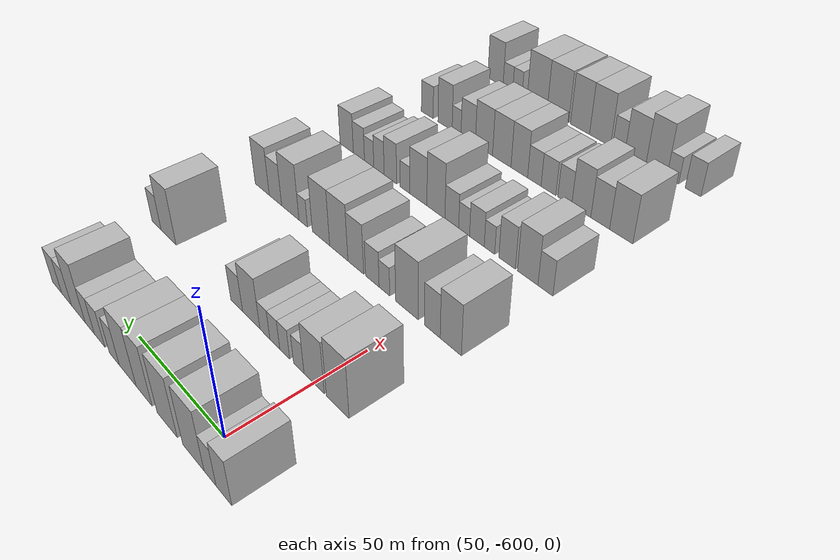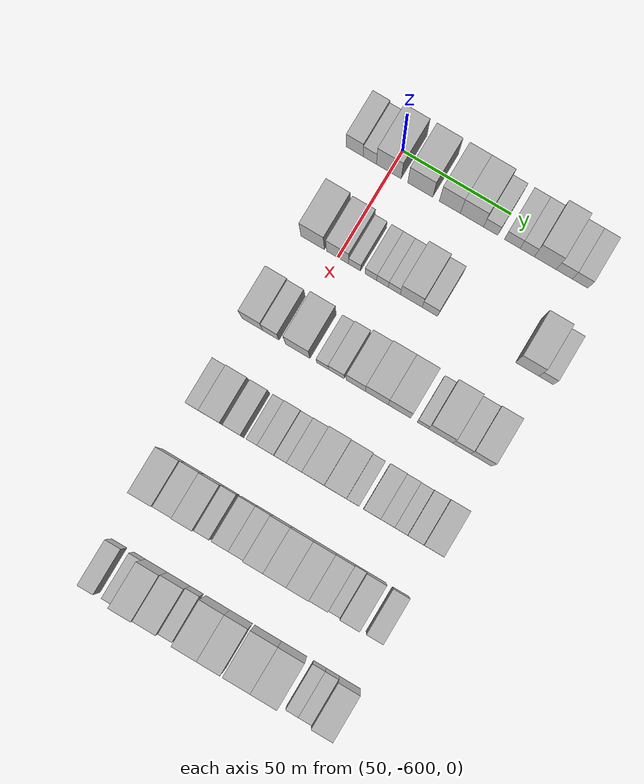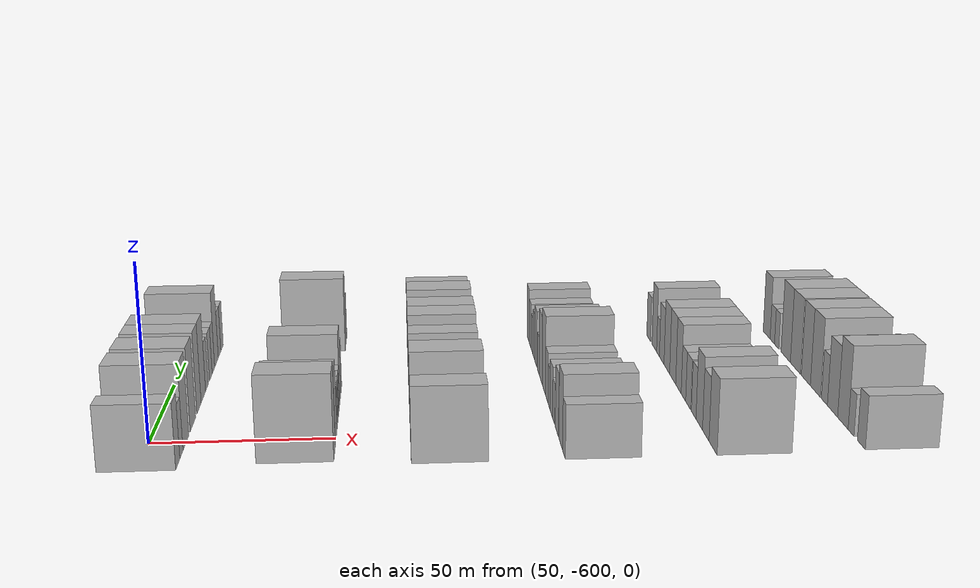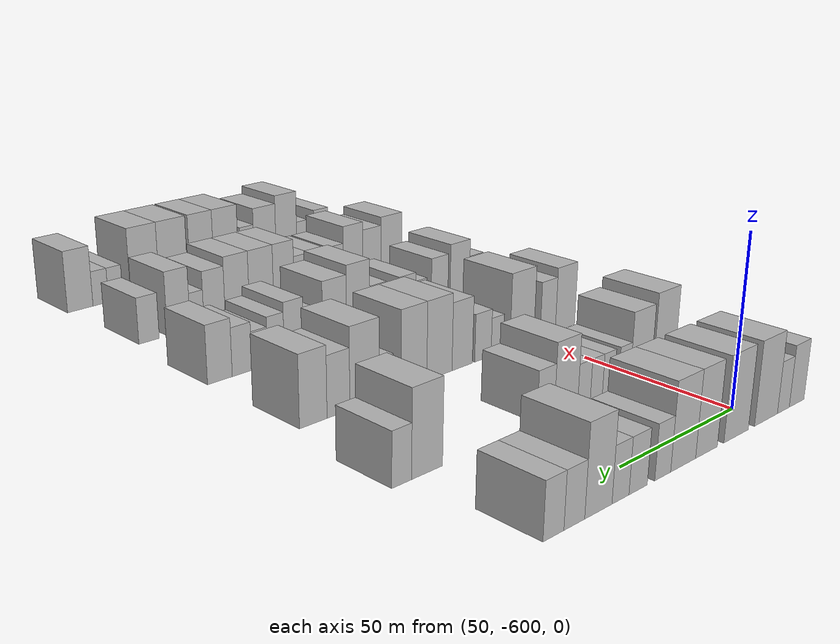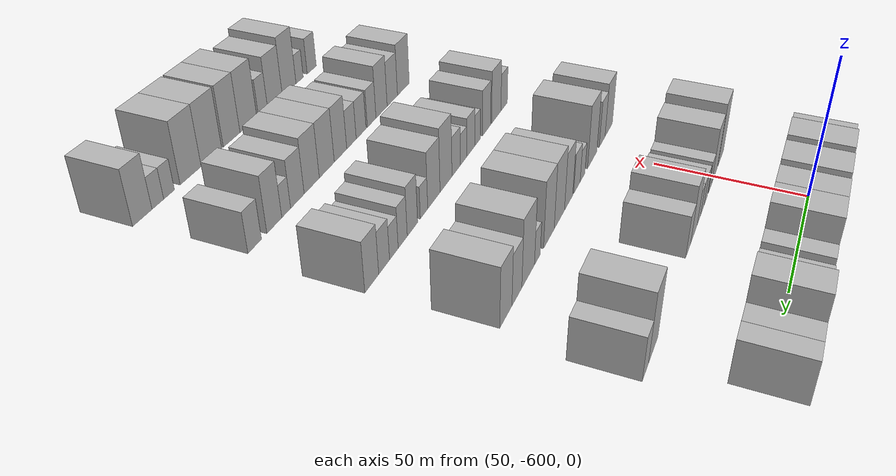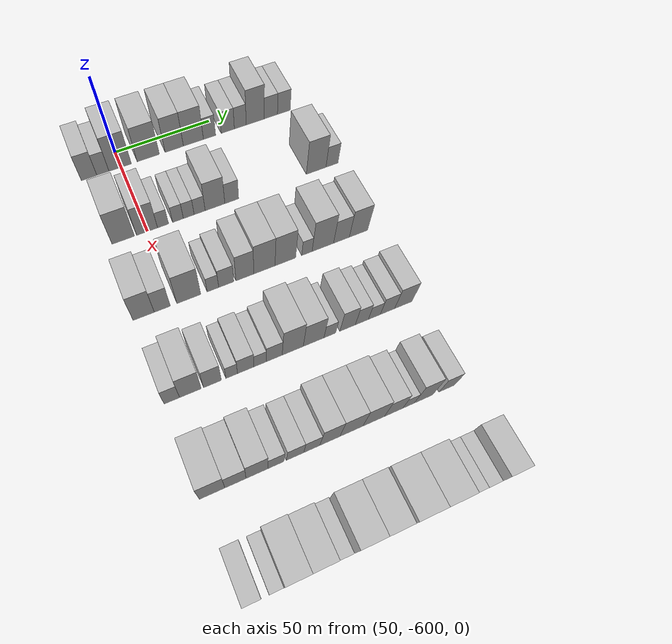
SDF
<sdf version="1.6">
 <world name="default">
  <model name="building_1">
   <static>1</static>
   <pose>50.0000 -616.1149 0 0.000000 0.000000 0.000000</pose>
   <link name="link">
    <pose>0 0 9.00 0 0 0</pose>
    <collision name="collision"><geometry><box><size>20.0000 7.7702 18.0000</size></box></geometry></collision>
    <visual name="visual">
     <cast_shadows>0</cast_shadows>
     <geometry><box><size>20.0000 7.7702 18.0000</size></box></geometry>
     <material>
      <script>
       <uri>model://HANNAS_wall/materials/scripts</uri>
       <uri>model://HANNAS_wall/materials/textures</uri>
       <name>vrc/HANNAS_wall</name>
      </script>
     </material>
    </visual>
   </link>
  </model>
  <model name="building_2">
   <static>1</static>
   <pose>50.0000 -609.1644 0 0.000000 0.000000 0.000000</pose>
   <link name="link">
    <pose>0 0 7.50 0 0 0</pose>
    <collision name="collision"><geometry><box><size>20.0000 6.1308 15.0000</size></box></geometry></collision>
    <visual name="visual">
     <cast_shadows>0</cast_shadows>
     <geometry><box><size>20.0000 6.1308 15.0000</size></box></geometry>
     <material>
      <script>
       <uri>model://HANNAS_wall/materials/scripts</uri>
       <uri>model://HANNAS_wall/materials/textures</uri>
       <name>vrc/HANNAS_wall</name>
      </script>
     </material>
    </visual>
   </link>
  </model>
  <model name="building_3">
   <static>1</static>
   <pose>50.0000 -600.3946 0 0.000000 0.000000 0.000000</pose>
   <link name="link">
    <pose>0 0 12.00 0 0 0</pose>
    <collision name="collision"><geometry><box><size>20.0000 11.4088 24.0000</size></box></geometry></collision>
    <visual name="visual">
     <cast_shadows>0</cast_shadows>
     <geometry><box><size>20.0000 11.4088 24.0000</size></box></geometry>
     <material>
      <script>
       <uri>model://HANNAS_wall/materials/scripts</uri>
       <uri>model://HANNAS_wall/materials/textures</uri>
       <name>vrc/HANNAS_wall</name>
      </script>
     </material>
    </visual>
   </link>
  </model>
  <model name="building_4">
   <static>1</static>
   <pose>50.0000 -585.9319 0 0.000000 0.000000 0.000000</pose>
   <link name="link">
    <pose>0 0 12.00 0 0 0</pose>
    <collision name="collision"><geometry><box><size>20.0000 11.5164 24.0000</size></box></geometry></collision>
    <visual name="visual">
     <cast_shadows>0</cast_shadows>
     <geometry><box><size>20.0000 11.5164 24.0000</size></box></geometry>
     <material>
      <script>
       <uri>model://HANNAS_wall/materials/scripts</uri>
       <uri>model://HANNAS_wall/materials/textures</uri>
       <name>vrc/HANNAS_wall</name>
      </script>
     </material>
    </visual>
   </link>
  </model>
  <model name="building_5">
   <static>1</static>
   <pose>50.0000 -572.3471 0 0.000000 0.000000 0.000000</pose>
   <link name="link">
    <pose>0 0 12.00 0 0 0</pose>
    <collision name="collision"><geometry><box><size>20.0000 9.6532 24.0000</size></box></geometry></collision>
    <visual name="visual">
     <cast_shadows>0</cast_shadows>
     <geometry><box><size>20.0000 9.6532 24.0000</size></box></geometry>
     <material>
      <script>
       <uri>model://HANNAS_wall/materials/scripts</uri>
       <uri>model://HANNAS_wall/materials/textures</uri>
       <name>vrc/HANNAS_wall</name>
      </script>
     </material>
    </visual>
   </link>
  </model>
  <model name="building_6">
   <static>1</static>
   <pose>50.0000 -562.2004 0 0.000000 0.000000 0.000000</pose>
   <link name="link">
    <pose>0 0 12.00 0 0 0</pose>
    <collision name="collision"><geometry><box><size>20.0000 10.6402 24.0000</size></box></geometry></collision>
    <visual name="visual">
     <cast_shadows>0</cast_shadows>
     <geometry><box><size>20.0000 10.6402 24.0000</size></box></geometry>
     <material>
      <script>
       <uri>model://HANNAS_wall/materials/scripts</uri>
       <uri>model://HANNAS_wall/materials/textures</uri>
       <name>vrc/HANNAS_wall</name>
      </script>
     </material>
    </visual>
   </link>
  </model>
  <model name="building_7">
   <static>1</static>
   <pose>50.0000 -553.5937 0 0.000000 0.000000 0.000000</pose>
   <link name="link">
    <pose>0 0 7.50 0 0 0</pose>
    <collision name="collision"><geometry><box><size>20.0000 6.5731 15.0000</size></box></geometry></collision>
    <visual name="visual">
     <cast_shadows>0</cast_shadows>
     <geometry><box><size>20.0000 6.5731 15.0000</size></box></geometry>
     <material>
      <script>
       <uri>model://HANNAS_wall/materials/scripts</uri>
       <uri>model://HANNAS_wall/materials/textures</uri>
       <name>vrc/HANNAS_wall</name>
      </script>
     </material>
    </visual>
   </link>
  </model>
  <model name="building_8">
   <static>1</static>
   <pose>50.0000 -543.7101 0 0.000000 0.000000 0.000000</pose>
   <link name="link">
    <pose>0 0 7.50 0 0 0</pose>
    <collision name="collision"><geometry><box><size>20.0000 7.1941 15.0000</size></box></geometry></collision>
    <visual name="visual">
     <cast_shadows>0</cast_shadows>
     <geometry><box><size>20.0000 7.1941 15.0000</size></box></geometry>
     <material>
      <script>
       <uri>model://HANNAS_wall/materials/scripts</uri>
       <uri>model://HANNAS_wall/materials/textures</uri>
       <name>vrc/HANNAS_wall</name>
      </script>
     </material>
    </visual>
   </link>
  </model>
  <model name="building_9">
   <static>1</static>
   <pose>50.0000 -536.8628 0 0.000000 0.000000 0.000000</pose>
   <link name="link">
    <pose>0 0 7.50 0 0 0</pose>
    <collision name="collision"><geometry><box><size>20.0000 6.5006 15.0000</size></box></geometry></collision>
    <visual name="visual">
     <cast_shadows>0</cast_shadows>
     <geometry><box><size>20.0000 6.5006 15.0000</size></box></geometry>
     <material>
      <script>
       <uri>model://HANNAS_wall/materials/scripts</uri>
       <uri>model://HANNAS_wall/materials/textures</uri>
       <name>vrc/HANNAS_wall</name>
      </script>
     </material>
    </visual>
   </link>
  </model>
  <model name="building_10">
   <static>1</static>
   <pose>50.0000 -528.6027 0 0.000000 0.000000 0.000000</pose>
   <link name="link">
    <pose>0 0 12.00 0 0 0</pose>
    <collision name="collision"><geometry><box><size>20.0000 10.0195 24.0000</size></box></geometry></collision>
    <visual name="visual">
     <cast_shadows>0</cast_shadows>
     <geometry><box><size>20.0000 10.0195 24.0000</size></box></geometry>
     <material>
      <script>
       <uri>model://HANNAS_wall/materials/scripts</uri>
       <uri>model://HANNAS_wall/materials/textures</uri>
       <name>vrc/HANNAS_wall</name>
      </script>
     </material>
    </visual>
   </link>
  </model>
  <model name="building_11">
   <static>1</static>
   <pose>50.0000 -519.9171 0 0.000000 0.000000 0.000000</pose>
   <link name="link">
    <pose>0 0 7.50 0 0 0</pose>
    <collision name="collision"><geometry><box><size>20.0000 7.3516 15.0000</size></box></geometry></collision>
    <visual name="visual">
     <cast_shadows>0</cast_shadows>
     <geometry><box><size>20.0000 7.3516 15.0000</size></box></geometry>
     <material>
      <script>
       <uri>model://HANNAS_wall/materials/scripts</uri>
       <uri>model://HANNAS_wall/materials/textures</uri>
       <name>vrc/HANNAS_wall</name>
      </script>
     </material>
    </visual>
   </link>
  </model>
  <model name="building_12">
   <static>1</static>
   <pose>50.0000 -512.6618 0 0.000000 0.000000 0.000000</pose>
   <link name="link">
    <pose>0 0 7.50 0 0 0</pose>
    <collision name="collision"><geometry><box><size>20.0000 7.1590 15.0000</size></box></geometry></collision>
    <visual name="visual">
     <cast_shadows>0</cast_shadows>
     <geometry><box><size>20.0000 7.1590 15.0000</size></box></geometry>
     <material>
      <script>
       <uri>model://HANNAS_wall/materials/scripts</uri>
       <uri>model://HANNAS_wall/materials/textures</uri>
       <name>vrc/HANNAS_wall</name>
      </script>
     </material>
    </visual>
   </link>
  </model>
  <model name="building_143">
   <static>1</static>
   <pose>90.0000 -611.6116 0 0.000000 0.000000 0.000000</pose>
   <link name="link">
    <pose>0 0 12.00 0 0 0</pose>
    <collision name="collision"><geometry><box><size>20.0000 10.7768 24.0000</size></box></geometry></collision>
    <visual name="visual">
     <cast_shadows>0</cast_shadows>
     <geometry><box><size>20.0000 10.7768 24.0000</size></box></geometry>
     <material>
      <script>
       <uri>model://HANNAS_wall/materials/scripts</uri>
       <uri>model://HANNAS_wall/materials/textures</uri>
       <name>vrc/HANNAS_wall</name>
      </script>
     </material>
    </visual>
   </link>
  </model>
  <model name="building_144">
   <static>1</static>
   <pose>90.0000 -600.1231 0 0.000000 0.000000 0.000000</pose>
   <link name="link">
    <pose>0 0 10.50 0 0 0</pose>
    <collision name="collision"><geometry><box><size>20.0000 10.2001 21.0000</size></box></geometry></collision>
    <visual name="visual">
     <cast_shadows>0</cast_shadows>
     <geometry><box><size>20.0000 10.2001 21.0000</size></box></geometry>
     <material>
      <script>
       <uri>model://HANNAS_wall/materials/scripts</uri>
       <uri>model://HANNAS_wall/materials/textures</uri>
       <name>vrc/HANNAS_wall</name>
      </script>
     </material>
    </visual>
   </link>
  </model>
  <model name="building_145">
   <static>1</static>
   <pose>90.0000 -592.3110 0 0.000000 0.000000 0.000000</pose>
   <link name="link">
    <pose>0 0 6.00 0 0 0</pose>
    <collision name="collision"><geometry><box><size>20.0000 5.4240 12.0000</size></box></geometry></collision>
    <visual name="visual">
     <cast_shadows>0</cast_shadows>
     <geometry><box><size>20.0000 5.4240 12.0000</size></box></geometry>
     <material>
      <script>
       <uri>model://HANNAS_wall/materials/scripts</uri>
       <uri>model://HANNAS_wall/materials/textures</uri>
       <name>vrc/HANNAS_wall</name>
      </script>
     </material>
    </visual>
   </link>
  </model>
  <model name="building_146">
   <static>1</static>
   <pose>90.0000 -584.9441 0 0.000000 0.000000 0.000000</pose>
   <link name="link">
    <pose>0 0 6.00 0 0 0</pose>
    <collision name="collision"><geometry><box><size>20.0000 5.3097 12.0000</size></box></geometry></collision>
    <visual name="visual">
     <cast_shadows>0</cast_shadows>
     <geometry><box><size>20.0000 5.3097 12.0000</size></box></geometry>
     <material>
      <script>
       <uri>model://HANNAS_wall/materials/scripts</uri>
       <uri>model://HANNAS_wall/materials/textures</uri>
       <name>vrc/HANNAS_wall</name>
      </script>
     </material>
    </visual>
   </link>
  </model>
  <model name="building_147">
   <static>1</static>
   <pose>90.0000 -579.5934 0 0.000000 0.000000 0.000000</pose>
   <link name="link">
    <pose>0 0 6.00 0 0 0</pose>
    <collision name="collision"><geometry><box><size>20.0000 5.3918 12.0000</size></box></geometry></collision>
    <visual name="visual">
     <cast_shadows>0</cast_shadows>
     <geometry><box><size>20.0000 5.3918 12.0000</size></box></geometry>
     <material>
      <script>
       <uri>model://HANNAS_wall/materials/scripts</uri>
       <uri>model://HANNAS_wall/materials/textures</uri>
       <name>vrc/HANNAS_wall</name>
      </script>
     </material>
    </visual>
   </link>
  </model>
  <model name="building_148">
   <static>1</static>
   <pose>90.0000 -574.1305 0 0.000000 0.000000 0.000000</pose>
   <link name="link">
    <pose>0 0 6.00 0 0 0</pose>
    <collision name="collision"><geometry><box><size>20.0000 5.5339 12.0000</size></box></geometry></collision>
    <visual name="visual">
     <cast_shadows>0</cast_shadows>
     <geometry><box><size>20.0000 5.5339 12.0000</size></box></geometry>
     <material>
      <script>
       <uri>model://HANNAS_wall/materials/scripts</uri>
       <uri>model://HANNAS_wall/materials/textures</uri>
       <name>vrc/HANNAS_wall</name>
      </script>
     </material>
    </visual>
   </link>
  </model>
  <model name="building_149">
   <static>1</static>
   <pose>90.0000 -566.3883 0 0.000000 0.000000 0.000000</pose>
   <link name="link">
    <pose>0 0 10.50 0 0 0</pose>
    <collision name="collision"><geometry><box><size>20.0000 9.9505 21.0000</size></box></geometry></collision>
    <visual name="visual">
     <cast_shadows>0</cast_shadows>
     <geometry><box><size>20.0000 9.9505 21.0000</size></box></geometry>
     <material>
      <script>
       <uri>model://HANNAS_wall/materials/scripts</uri>
       <uri>model://HANNAS_wall/materials/textures</uri>
       <name>vrc/HANNAS_wall</name>
      </script>
     </material>
    </visual>
   </link>
  </model>
  <model name="building_150">
   <static>1</static>
   <pose>90.0000 -557.8802 0 0.000000 0.000000 0.000000</pose>
   <link name="link">
    <pose>0 0 7.50 0 0 0</pose>
    <collision name="collision"><geometry><box><size>20.0000 7.0658 15.0000</size></box></geometry></collision>
    <visual name="visual">
     <cast_shadows>0</cast_shadows>
     <geometry><box><size>20.0000 7.0658 15.0000</size></box></geometry>
     <material>
      <script>
       <uri>model://HANNAS_wall/materials/scripts</uri>
       <uri>model://HANNAS_wall/materials/textures</uri>
       <name>vrc/HANNAS_wall</name>
      </script>
     </material>
    </visual>
   </link>
  </model>
  <model name="building_151">
   <static>1</static>
   <pose>90.0000 -513.4786 0 0.000000 0.000000 0.000000</pose>
   <link name="link">
    <pose>0 0 12.00 0 0 0</pose>
    <collision name="collision"><geometry><box><size>20.0000 10.5791 24.0000</size></box></geometry></collision>
    <visual name="visual">
     <cast_shadows>0</cast_shadows>
     <geometry><box><size>20.0000 10.5791 24.0000</size></box></geometry>
     <material>
      <script>
       <uri>model://HANNAS_wall/materials/scripts</uri>
       <uri>model://HANNAS_wall/materials/textures</uri>
       <name>vrc/HANNAS_wall</name>
      </script>
     </material>
    </visual>
   </link>
  </model>
  <model name="building_152">
   <static>1</static>
   <pose>90.0000 -504.9172 0 0.000000 0.000000 0.000000</pose>
   <link name="link">
    <pose>0 0 7.50 0 0 0</pose>
    <collision name="collision"><geometry><box><size>20.0000 6.5437 15.0000</size></box></geometry></collision>
    <visual name="visual">
     <cast_shadows>0</cast_shadows>
     <geometry><box><size>20.0000 6.5437 15.0000</size></box></geometry>
     <material>
      <script>
       <uri>model://HANNAS_wall/materials/scripts</uri>
       <uri>model://HANNAS_wall/materials/textures</uri>
       <name>vrc/HANNAS_wall</name>
      </script>
     </material>
    </visual>
   </link>
  </model>
  <model name="building_264">
   <static>1</static>
   <pose>130.0000 -615.1982 0 0.000000 0.000000 0.000000</pose>
   <link name="link">
    <pose>0 0 10.50 0 0 0</pose>
    <collision name="collision"><geometry><box><size>20.0000 9.6036 21.0000</size></box></geometry></collision>
    <visual name="visual">
     <cast_shadows>0</cast_shadows>
     <geometry><box><size>20.0000 9.6036 21.0000</size></box></geometry>
     <material>
      <script>
       <uri>model://HANNAS_wall/materials/scripts</uri>
       <uri>model://HANNAS_wall/materials/textures</uri>
       <name>vrc/HANNAS_wall</name>
      </script>
     </material>
    </visual>
   </link>
  </model>
  <model name="building_265">
   <static>1</static>
   <pose>130.0000 -606.7101 0 0.000000 0.000000 0.000000</pose>
   <link name="link">
    <pose>0 0 9.00 0 0 0</pose>
    <collision name="collision"><geometry><box><size>20.0000 7.3726 18.0000</size></box></geometry></collision>
    <visual name="visual">
     <cast_shadows>0</cast_shadows>
     <geometry><box><size>20.0000 7.3726 18.0000</size></box></geometry>
     <material>
      <script>
       <uri>model://HANNAS_wall/materials/scripts</uri>
       <uri>model://HANNAS_wall/materials/textures</uri>
       <name>vrc/HANNAS_wall</name>
      </script>
     </material>
    </visual>
   </link>
  </model>
  <model name="building_266">
   <static>1</static>
   <pose>130.0000 -594.4549 0 0.000000 0.000000 0.000000</pose>
   <link name="link">
    <pose>0 0 12.00 0 0 0</pose>
    <collision name="collision"><geometry><box><size>20.0000 11.1380 24.0000</size></box></geometry></collision>
    <visual name="visual">
     <cast_shadows>0</cast_shadows>
     <geometry><box><size>20.0000 11.1380 24.0000</size></box></geometry>
     <material>
      <script>
       <uri>model://HANNAS_wall/materials/scripts</uri>
       <uri>model://HANNAS_wall/materials/textures</uri>
       <name>vrc/HANNAS_wall</name>
      </script>
     </material>
    </visual>
   </link>
  </model>
  <model name="building_267">
   <static>1</static>
   <pose>130.0000 -583.1465 0 0.000000 0.000000 0.000000</pose>
   <link name="link">
    <pose>0 0 6.00 0 0 0</pose>
    <collision name="collision"><geometry><box><size>20.0000 5.4787 12.0000</size></box></geometry></collision>
    <visual name="visual">
     <cast_shadows>0</cast_shadows>
     <geometry><box><size>20.0000 5.4787 12.0000</size></box></geometry>
     <material>
      <script>
       <uri>model://HANNAS_wall/materials/scripts</uri>
       <uri>model://HANNAS_wall/materials/textures</uri>
       <name>vrc/HANNAS_wall</name>
      </script>
     </material>
    </visual>
   </link>
  </model>
  <model name="building_268">
   <static>1</static>
   <pose>130.0000 -576.8171 0 0.000000 0.000000 0.000000</pose>
   <link name="link">
    <pose>0 0 7.50 0 0 0</pose>
    <collision name="collision"><geometry><box><size>20.0000 7.1802 15.0000</size></box></geometry></collision>
    <visual name="visual">
     <cast_shadows>0</cast_shadows>
     <geometry><box><size>20.0000 7.1802 15.0000</size></box></geometry>
     <material>
      <script>
       <uri>model://HANNAS_wall/materials/scripts</uri>
       <uri>model://HANNAS_wall/materials/textures</uri>
       <name>vrc/HANNAS_wall</name>
      </script>
     </material>
    </visual>
   </link>
  </model>
  <model name="building_269">
   <static>1</static>
   <pose>130.0000 -567.9009 0 0.000000 0.000000 0.000000</pose>
   <link name="link">
    <pose>0 0 10.50 0 0 0</pose>
    <collision name="collision"><geometry><box><size>20.0000 8.6522 21.0000</size></box></geometry></collision>
    <visual name="visual">
     <cast_shadows>0</cast_shadows>
     <geometry><box><size>20.0000 8.6522 21.0000</size></box></geometry>
     <material>
      <script>
       <uri>model://HANNAS_wall/materials/scripts</uri>
       <uri>model://HANNAS_wall/materials/textures</uri>
       <name>vrc/HANNAS_wall</name>
      </script>
     </material>
    </visual>
   </link>
  </model>
  <model name="building_270">
   <static>1</static>
   <pose>130.0000 -558.3984 0 0.000000 0.000000 0.000000</pose>
   <link name="link">
    <pose>0 0 12.00 0 0 0</pose>
    <collision name="collision"><geometry><box><size>20.0000 10.3528 24.0000</size></box></geometry></collision>
    <visual name="visual">
     <cast_shadows>0</cast_shadows>
     <geometry><box><size>20.0000 10.3528 24.0000</size></box></geometry>
     <material>
      <script>
       <uri>model://HANNAS_wall/materials/scripts</uri>
       <uri>model://HANNAS_wall/materials/textures</uri>
       <name>vrc/HANNAS_wall</name>
      </script>
     </material>
    </visual>
   </link>
  </model>
  <model name="building_271">
   <static>1</static>
   <pose>130.0000 -548.1175 0 0.000000 0.000000 0.000000</pose>
   <link name="link">
    <pose>0 0 12.00 0 0 0</pose>
    <collision name="collision"><geometry><box><size>20.0000 10.2091 24.0000</size></box></geometry></collision>
    <visual name="visual">
     <cast_shadows>0</cast_shadows>
     <geometry><box><size>20.0000 10.2091 24.0000</size></box></geometry>
     <material>
      <script>
       <uri>model://HANNAS_wall/materials/scripts</uri>
       <uri>model://HANNAS_wall/materials/textures</uri>
       <name>vrc/HANNAS_wall</name>
      </script>
     </material>
    </visual>
   </link>
  </model>
  <model name="building_272">
   <static>1</static>
   <pose>130.0000 -537.4158 0 0.000000 0.000000 0.000000</pose>
   <link name="link">
    <pose>0 0 6.00 0 0 0</pose>
    <collision name="collision"><geometry><box><size>20.0000 5.1942 12.0000</size></box></geometry></collision>
    <visual name="visual">
     <cast_shadows>0</cast_shadows>
     <geometry><box><size>20.0000 5.1942 12.0000</size></box></geometry>
     <material>
      <script>
       <uri>model://HANNAS_wall/materials/scripts</uri>
       <uri>model://HANNAS_wall/materials/textures</uri>
       <name>vrc/HANNAS_wall</name>
      </script>
     </material>
    </visual>
   </link>
  </model>
  <model name="building_273">
   <static>1</static>
   <pose>130.0000 -529.3604 0 0.000000 0.000000 0.000000</pose>
   <link name="link">
    <pose>0 0 12.00 0 0 0</pose>
    <collision name="collision"><geometry><box><size>20.0000 10.9167 24.0000</size></box></geometry></collision>
    <visual name="visual">
     <cast_shadows>0</cast_shadows>
     <geometry><box><size>20.0000 10.9167 24.0000</size></box></geometry>
     <material>
      <script>
       <uri>model://HANNAS_wall/materials/scripts</uri>
       <uri>model://HANNAS_wall/materials/textures</uri>
       <name>vrc/HANNAS_wall</name>
      </script>
     </material>
    </visual>
   </link>
  </model>
  <model name="building_274">
   <static>1</static>
   <pose>130.0000 -519.8561 0 0.000000 0.000000 0.000000</pose>
   <link name="link">
    <pose>0 0 9.00 0 0 0</pose>
    <collision name="collision"><geometry><box><size>20.0000 8.0918 18.0000</size></box></geometry></collision>
    <visual name="visual">
     <cast_shadows>0</cast_shadows>
     <geometry><box><size>20.0000 8.0918 18.0000</size></box></geometry>
     <material>
      <script>
       <uri>model://HANNAS_wall/materials/scripts</uri>
       <uri>model://HANNAS_wall/materials/textures</uri>
       <name>vrc/HANNAS_wall</name>
      </script>
     </material>
    </visual>
   </link>
  </model>
  <model name="building_275">
   <static>1</static>
   <pose>130.0000 -511.0753 0 0.000000 0.000000 0.000000</pose>
   <link name="link">
    <pose>0 0 10.50 0 0 0</pose>
    <collision name="collision"><geometry><box><size>20.0000 9.4700 21.0000</size></box></geometry></collision>
    <visual name="visual">
     <cast_shadows>0</cast_shadows>
     <geometry><box><size>20.0000 9.4700 21.0000</size></box></geometry>
     <material>
      <script>
       <uri>model://HANNAS_wall/materials/scripts</uri>
       <uri>model://HANNAS_wall/materials/textures</uri>
       <name>vrc/HANNAS_wall</name>
      </script>
     </material>
    </visual>
   </link>
  </model>
  <model name="building_400">
   <static>1</static>
   <pose>170.0000 -616.6754 0 0.000000 0.000000 0.000000</pose>
   <link name="link">
    <pose>0 0 7.50 0 0 0</pose>
    <collision name="collision"><geometry><box><size>20.0000 6.6492 15.0000</size></box></geometry></collision>
    <visual name="visual">
     <cast_shadows>0</cast_shadows>
     <geometry><box><size>20.0000 6.6492 15.0000</size></box></geometry>
     <material>
      <script>
       <uri>model://HANNAS_wall/materials/scripts</uri>
       <uri>model://HANNAS_wall/materials/textures</uri>
       <name>vrc/HANNAS_wall</name>
      </script>
     </material>
    </visual>
   </link>
  </model>
  <model name="building_401">
   <static>1</static>
   <pose>170.0000 -608.6619 0 0.000000 0.000000 0.000000</pose>
   <link name="link">
    <pose>0 0 10.50 0 0 0</pose>
    <collision name="collision"><geometry><box><size>20.0000 9.3779 21.0000</size></box></geometry></collision>
    <visual name="visual">
     <cast_shadows>0</cast_shadows>
     <geometry><box><size>20.0000 9.3779 21.0000</size></box></geometry>
     <material>
      <script>
       <uri>model://HANNAS_wall/materials/scripts</uri>
       <uri>model://HANNAS_wall/materials/textures</uri>
       <name>vrc/HANNAS_wall</name>
      </script>
     </material>
    </visual>
   </link>
  </model>
  <model name="building_402">
   <static>1</static>
   <pose>170.0000 -599.0482 0 0.000000 0.000000 0.000000</pose>
   <link name="link">
    <pose>0 0 9.00 0 0 0</pose>
    <collision name="collision"><geometry><box><size>20.0000 7.8495 18.0000</size></box></geometry></collision>
    <visual name="visual">
     <cast_shadows>0</cast_shadows>
     <geometry><box><size>20.0000 7.8495 18.0000</size></box></geometry>
     <material>
      <script>
       <uri>model://HANNAS_wall/materials/scripts</uri>
       <uri>model://HANNAS_wall/materials/textures</uri>
       <name>vrc/HANNAS_wall</name>
      </script>
     </material>
    </visual>
   </link>
  </model>
  <model name="building_403">
   <static>1</static>
   <pose>170.0000 -590.5493 0 0.000000 0.000000 0.000000</pose>
   <link name="link">
    <pose>0 0 6.00 0 0 0</pose>
    <collision name="collision"><geometry><box><size>20.0000 5.1484 12.0000</size></box></geometry></collision>
    <visual name="visual">
     <cast_shadows>0</cast_shadows>
     <geometry><box><size>20.0000 5.1484 12.0000</size></box></geometry>
     <material>
      <script>
       <uri>model://HANNAS_wall/materials/scripts</uri>
       <uri>model://HANNAS_wall/materials/textures</uri>
       <name>vrc/HANNAS_wall</name>
      </script>
     </material>
    </visual>
   </link>
  </model>
  <model name="building_404">
   <static>1</static>
   <pose>170.0000 -584.2911 0 0.000000 0.000000 0.000000</pose>
   <link name="link">
    <pose>0 0 7.50 0 0 0</pose>
    <collision name="collision"><geometry><box><size>20.0000 7.3679 15.0000</size></box></geometry></collision>
    <visual name="visual">
     <cast_shadows>0</cast_shadows>
     <geometry><box><size>20.0000 7.3679 15.0000</size></box></geometry>
     <material>
      <script>
       <uri>model://HANNAS_wall/materials/scripts</uri>
       <uri>model://HANNAS_wall/materials/textures</uri>
       <name>vrc/HANNAS_wall</name>
      </script>
     </material>
    </visual>
   </link>
  </model>
  <model name="building_405">
   <static>1</static>
   <pose>170.0000 -577.7907 0 0.000000 0.000000 0.000000</pose>
   <link name="link">
    <pose>0 0 6.00 0 0 0</pose>
    <collision name="collision"><geometry><box><size>20.0000 5.6329 12.0000</size></box></geometry></collision>
    <visual name="visual">
     <cast_shadows>0</cast_shadows>
     <geometry><box><size>20.0000 5.6329 12.0000</size></box></geometry>
     <material>
      <script>
       <uri>model://HANNAS_wall/materials/scripts</uri>
       <uri>model://HANNAS_wall/materials/textures</uri>
       <name>vrc/HANNAS_wall</name>
      </script>
     </material>
    </visual>
   </link>
  </model>
  <model name="building_406">
   <static>1</static>
   <pose>170.0000 -571.3743 0 0.000000 0.000000 0.000000</pose>
   <link name="link">
    <pose>0 0 7.50 0 0 0</pose>
    <collision name="collision"><geometry><box><size>20.0000 7.1998 15.0000</size></box></geometry></collision>
    <visual name="visual">
     <cast_shadows>0</cast_shadows>
     <geometry><box><size>20.0000 7.1998 15.0000</size></box></geometry>
     <material>
      <script>
       <uri>model://HANNAS_wall/materials/scripts</uri>
       <uri>model://HANNAS_wall/materials/textures</uri>
       <name>vrc/HANNAS_wall</name>
      </script>
     </material>
    </visual>
   </link>
  </model>
  <model name="building_407">
   <static>1</static>
   <pose>170.0000 -562.8871 0 0.000000 0.000000 0.000000</pose>
   <link name="link">
    <pose>0 0 12.00 0 0 0</pose>
    <collision name="collision"><geometry><box><size>20.0000 9.7747 24.0000</size></box></geometry></collision>
    <visual name="visual">
     <cast_shadows>0</cast_shadows>
     <geometry><box><size>20.0000 9.7747 24.0000</size></box></geometry>
     <material>
      <script>
       <uri>model://HANNAS_wall/materials/scripts</uri>
       <uri>model://HANNAS_wall/materials/textures</uri>
       <name>vrc/HANNAS_wall</name>
      </script>
     </material>
    </visual>
   </link>
  </model>
  <model name="building_408">
   <static>1</static>
   <pose>170.0000 -553.1674 0 0.000000 0.000000 0.000000</pose>
   <link name="link">
    <pose>0 0 10.50 0 0 0</pose>
    <collision name="collision"><geometry><box><size>20.0000 9.6646 21.0000</size></box></geometry></collision>
    <visual name="visual">
     <cast_shadows>0</cast_shadows>
     <geometry><box><size>20.0000 9.6646 21.0000</size></box></geometry>
     <material>
      <script>
       <uri>model://HANNAS_wall/materials/scripts</uri>
       <uri>model://HANNAS_wall/materials/textures</uri>
       <name>vrc/HANNAS_wall</name>
      </script>
     </material>
    </visual>
   </link>
  </model>
  <model name="building_409">
   <static>1</static>
   <pose>170.0000 -545.5513 0 0.000000 0.000000 0.000000</pose>
   <link name="link">
    <pose>0 0 6.00 0 0 0</pose>
    <collision name="collision"><geometry><box><size>20.0000 5.5677 12.0000</size></box></geometry></collision>
    <visual name="visual">
     <cast_shadows>0</cast_shadows>
     <geometry><box><size>20.0000 5.5677 12.0000</size></box></geometry>
     <material>
      <script>
       <uri>model://HANNAS_wall/materials/scripts</uri>
       <uri>model://HANNAS_wall/materials/textures</uri>
       <name>vrc/HANNAS_wall</name>
      </script>
     </material>
    </visual>
   </link>
  </model>
  <model name="building_410">
   <static>1</static>
   <pose>170.0000 -537.0528 0 0.000000 0.000000 0.000000</pose>
   <link name="link">
    <pose>0 0 9.00 0 0 0</pose>
    <collision name="collision"><geometry><box><size>20.0000 7.4292 18.0000</size></box></geometry></collision>
    <visual name="visual">
     <cast_shadows>0</cast_shadows>
     <geometry><box><size>20.0000 7.4292 18.0000</size></box></geometry>
     <material>
      <script>
       <uri>model://HANNAS_wall/materials/scripts</uri>
       <uri>model://HANNAS_wall/materials/textures</uri>
       <name>vrc/HANNAS_wall</name>
      </script>
     </material>
    </visual>
   </link>
  </model>
  <model name="building_411">
   <static>1</static>
   <pose>170.0000 -530.1943 0 0.000000 0.000000 0.000000</pose>
   <link name="link">
    <pose>0 0 7.50 0 0 0</pose>
    <collision name="collision"><geometry><box><size>20.0000 6.2876 15.0000</size></box></geometry></collision>
    <visual name="visual">
     <cast_shadows>0</cast_shadows>
     <geometry><box><size>20.0000 6.2876 15.0000</size></box></geometry>
     <material>
      <script>
       <uri>model://HANNAS_wall/materials/scripts</uri>
       <uri>model://HANNAS_wall/materials/textures</uri>
       <name>vrc/HANNAS_wall</name>
      </script>
     </material>
    </visual>
   </link>
  </model>
  <model name="building_412">
   <static>1</static>
   <pose>170.0000 -524.1523 0 0.000000 0.000000 0.000000</pose>
   <link name="link">
    <pose>0 0 6.00 0 0 0</pose>
    <collision name="collision"><geometry><box><size>20.0000 5.7964 12.0000</size></box></geometry></collision>
    <visual name="visual">
     <cast_shadows>0</cast_shadows>
     <geometry><box><size>20.0000 5.7964 12.0000</size></box></geometry>
     <material>
      <script>
       <uri>model://HANNAS_wall/materials/scripts</uri>
       <uri>model://HANNAS_wall/materials/textures</uri>
       <name>vrc/HANNAS_wall</name>
      </script>
     </material>
    </visual>
   </link>
  </model>
  <model name="building_413">
   <static>1</static>
   <pose>170.0000 -517.7352 0 0.000000 0.000000 0.000000</pose>
   <link name="link">
    <pose>0 0 7.50 0 0 0</pose>
    <collision name="collision"><geometry><box><size>20.0000 7.0379 15.0000</size></box></geometry></collision>
    <visual name="visual">
     <cast_shadows>0</cast_shadows>
     <geometry><box><size>20.0000 7.0379 15.0000</size></box></geometry>
     <material>
      <script>
       <uri>model://HANNAS_wall/materials/scripts</uri>
       <uri>model://HANNAS_wall/materials/textures</uri>
       <name>vrc/HANNAS_wall</name>
      </script>
     </material>
    </visual>
   </link>
  </model>
  <model name="building_414">
   <static>1</static>
   <pose>170.0000 -509.8837 0 0.000000 0.000000 0.000000</pose>
   <link name="link">
    <pose>0 0 9.00 0 0 0</pose>
    <collision name="collision"><geometry><box><size>20.0000 8.6650 18.0000</size></box></geometry></collision>
    <visual name="visual">
     <cast_shadows>0</cast_shadows>
     <geometry><box><size>20.0000 8.6650 18.0000</size></box></geometry>
     <material>
      <script>
       <uri>model://HANNAS_wall/materials/scripts</uri>
       <uri>model://HANNAS_wall/materials/textures</uri>
       <name>vrc/HANNAS_wall</name>
      </script>
     </material>
    </visual>
   </link>
  </model>
  <model name="building_545">
   <static>1</static>
   <pose>210.0000 -614.8289 0 0.000000 0.000000 0.000000</pose>
   <link name="link">
    <pose>0 0 10.50 0 0 0</pose>
    <collision name="collision"><geometry><box><size>20.0000 10.3422 21.0000</size></box></geometry></collision>
    <visual name="visual">
     <cast_shadows>0</cast_shadows>
     <geometry><box><size>20.0000 10.3422 21.0000</size></box></geometry>
     <material>
      <script>
       <uri>model://HANNAS_wall/materials/scripts</uri>
       <uri>model://HANNAS_wall/materials/textures</uri>
       <name>vrc/HANNAS_wall</name>
      </script>
     </material>
    </visual>
   </link>
  </model>
  <model name="building_546">
   <static>1</static>
   <pose>210.0000 -605.3072 0 0.000000 0.000000 0.000000</pose>
   <link name="link">
    <pose>0 0 9.00 0 0 0</pose>
    <collision name="collision"><geometry><box><size>20.0000 8.7013 18.0000</size></box></geometry></collision>
    <visual name="visual">
     <cast_shadows>0</cast_shadows>
     <geometry><box><size>20.0000 8.7013 18.0000</size></box></geometry>
     <material>
      <script>
       <uri>model://HANNAS_wall/materials/scripts</uri>
       <uri>model://HANNAS_wall/materials/textures</uri>
       <name>vrc/HANNAS_wall</name>
      </script>
     </material>
    </visual>
   </link>
  </model>
  <model name="building_547">
   <static>1</static>
   <pose>210.0000 -596.4038 0 0.000000 0.000000 0.000000</pose>
   <link name="link">
    <pose>0 0 10.50 0 0 0</pose>
    <collision name="collision"><geometry><box><size>20.0000 9.1056 21.0000</size></box></geometry></collision>
    <visual name="visual">
     <cast_shadows>0</cast_shadows>
     <geometry><box><size>20.0000 9.1056 21.0000</size></box></geometry>
     <material>
      <script>
       <uri>model://HANNAS_wall/materials/scripts</uri>
       <uri>model://HANNAS_wall/materials/textures</uri>
       <name>vrc/HANNAS_wall</name>
      </script>
     </material>
    </visual>
   </link>
  </model>
  <model name="building_548">
   <static>1</static>
   <pose>210.0000 -588.4519 0 0.000000 0.000000 0.000000</pose>
   <link name="link">
    <pose>0 0 7.50 0 0 0</pose>
    <collision name="collision"><geometry><box><size>20.0000 6.7982 15.0000</size></box></geometry></collision>
    <visual name="visual">
     <cast_shadows>0</cast_shadows>
     <geometry><box><size>20.0000 6.7982 15.0000</size></box></geometry>
     <material>
      <script>
       <uri>model://HANNAS_wall/materials/scripts</uri>
       <uri>model://HANNAS_wall/materials/textures</uri>
       <name>vrc/HANNAS_wall</name>
      </script>
     </material>
    </visual>
   </link>
  </model>
  <model name="building_549">
   <static>1</static>
   <pose>210.0000 -580.3320 0 0.000000 0.000000 0.000000</pose>
   <link name="link">
    <pose>0 0 7.50 0 0 0</pose>
    <collision name="collision"><geometry><box><size>20.0000 7.4416 15.0000</size></box></geometry></collision>
    <visual name="visual">
     <cast_shadows>0</cast_shadows>
     <geometry><box><size>20.0000 7.4416 15.0000</size></box></geometry>
     <material>
      <script>
       <uri>model://HANNAS_wall/materials/scripts</uri>
       <uri>model://HANNAS_wall/materials/textures</uri>
       <name>vrc/HANNAS_wall</name>
      </script>
     </material>
    </visual>
   </link>
  </model>
  <model name="building_550">
   <static>1</static>
   <pose>210.0000 -573.1347 0 0.000000 0.000000 0.000000</pose>
   <link name="link">
    <pose>0 0 7.50 0 0 0</pose>
    <collision name="collision"><geometry><box><size>20.0000 6.9529 15.0000</size></box></geometry></collision>
    <visual name="visual">
     <cast_shadows>0</cast_shadows>
     <geometry><box><size>20.0000 6.9529 15.0000</size></box></geometry>
     <material>
      <script>
       <uri>model://HANNAS_wall/materials/scripts</uri>
       <uri>model://HANNAS_wall/materials/textures</uri>
       <name>vrc/HANNAS_wall</name>
      </script>
     </material>
    </visual>
   </link>
  </model>
  <model name="building_551">
   <static>1</static>
   <pose>210.0000 -565.2475 0 0.000000 0.000000 0.000000</pose>
   <link name="link">
    <pose>0 0 10.50 0 0 0</pose>
    <collision name="collision"><geometry><box><size>20.0000 8.8216 21.0000</size></box></geometry></collision>
    <visual name="visual">
     <cast_shadows>0</cast_shadows>
     <geometry><box><size>20.0000 8.8216 21.0000</size></box></geometry>
     <material>
      <script>
       <uri>model://HANNAS_wall/materials/scripts</uri>
       <uri>model://HANNAS_wall/materials/textures</uri>
       <name>vrc/HANNAS_wall</name>
      </script>
     </material>
    </visual>
   </link>
  </model>
  <model name="building_552">
   <static>1</static>
   <pose>210.0000 -555.7722 0 0.000000 0.000000 0.000000</pose>
   <link name="link">
    <pose>0 0 10.50 0 0 0</pose>
    <collision name="collision"><geometry><box><size>20.0000 10.1289 21.0000</size></box></geometry></collision>
    <visual name="visual">
     <cast_shadows>0</cast_shadows>
     <geometry><box><size>20.0000 10.1289 21.0000</size></box></geometry>
     <material>
      <script>
       <uri>model://HANNAS_wall/materials/scripts</uri>
       <uri>model://HANNAS_wall/materials/textures</uri>
       <name>vrc/HANNAS_wall</name>
      </script>
     </material>
    </visual>
   </link>
  </model>
  <model name="building_553">
   <static>1</static>
   <pose>210.0000 -545.8213 0 0.000000 0.000000 0.000000</pose>
   <link name="link">
    <pose>0 0 10.50 0 0 0</pose>
    <collision name="collision"><geometry><box><size>20.0000 9.7730 21.0000</size></box></geometry></collision>
    <visual name="visual">
     <cast_shadows>0</cast_shadows>
     <geometry><box><size>20.0000 9.7730 21.0000</size></box></geometry>
     <material>
      <script>
       <uri>model://HANNAS_wall/materials/scripts</uri>
       <uri>model://HANNAS_wall/materials/textures</uri>
       <name>vrc/HANNAS_wall</name>
      </script>
     </material>
    </visual>
   </link>
  </model>
  <model name="building_554">
   <static>1</static>
   <pose>210.0000 -536.7576 0 0.000000 0.000000 0.000000</pose>
   <link name="link">
    <pose>0 0 9.00 0 0 0</pose>
    <collision name="collision"><geometry><box><size>20.0000 8.3544 18.0000</size></box></geometry></collision>
    <visual name="visual">
     <cast_shadows>0</cast_shadows>
     <geometry><box><size>20.0000 8.3544 18.0000</size></box></geometry>
     <material>
      <script>
       <uri>model://HANNAS_wall/materials/scripts</uri>
       <uri>model://HANNAS_wall/materials/textures</uri>
       <name>vrc/HANNAS_wall</name>
      </script>
     </material>
    </visual>
   </link>
  </model>
  <model name="building_555">
   <static>1</static>
   <pose>210.0000 -529.9450 0 0.000000 0.000000 0.000000</pose>
   <link name="link">
    <pose>0 0 6.00 0 0 0</pose>
    <collision name="collision"><geometry><box><size>20.0000 5.2707 12.0000</size></box></geometry></collision>
    <visual name="visual">
     <cast_shadows>0</cast_shadows>
     <geometry><box><size>20.0000 5.2707 12.0000</size></box></geometry>
     <material>
      <script>
       <uri>model://HANNAS_wall/materials/scripts</uri>
       <uri>model://HANNAS_wall/materials/textures</uri>
       <name>vrc/HANNAS_wall</name>
      </script>
     </material>
    </visual>
   </link>
  </model>
  <model name="building_556">
   <static>1</static>
   <pose>210.0000 -523.0101 0 0.000000 0.000000 0.000000</pose>
   <link name="link">
    <pose>0 0 10.50 0 0 0</pose>
    <collision name="collision"><geometry><box><size>20.0000 8.5993 21.0000</size></box></geometry></collision>
    <visual name="visual">
     <cast_shadows>0</cast_shadows>
     <geometry><box><size>20.0000 8.5993 21.0000</size></box></geometry>
     <material>
      <script>
       <uri>model://HANNAS_wall/materials/scripts</uri>
       <uri>model://HANNAS_wall/materials/textures</uri>
       <name>vrc/HANNAS_wall</name>
      </script>
     </material>
    </visual>
   </link>
  </model>
  <model name="building_557">
   <static>1</static>
   <pose>210.0000 -512.0052 0 0.000000 0.000000 0.000000</pose>
   <link name="link">
    <pose>0 0 7.50 0 0 0</pose>
    <collision name="collision"><geometry><box><size>20.0000 7.4105 15.0000</size></box></geometry></collision>
    <visual name="visual">
     <cast_shadows>0</cast_shadows>
     <geometry><box><size>20.0000 7.4105 15.0000</size></box></geometry>
     <material>
      <script>
       <uri>model://HANNAS_wall/materials/scripts</uri>
       <uri>model://HANNAS_wall/materials/textures</uri>
       <name>vrc/HANNAS_wall</name>
      </script>
     </material>
    </visual>
   </link>
  </model>
  <model name="building_673">
   <static>1</static>
   <pose>250.0000 -615.4702 0 0.000000 0.000000 0.000000</pose>
   <link name="link">
    <pose>0 0 7.50 0 0 0</pose>
    <collision name="collision"><geometry><box><size>20.0000 7.0595 15.0000</size></box></geometry></collision>
    <visual name="visual">
     <cast_shadows>0</cast_shadows>
     <geometry><box><size>20.0000 7.0595 15.0000</size></box></geometry>
     <material>
      <script>
       <uri>model://HANNAS_wall/materials/scripts</uri>
       <uri>model://HANNAS_wall/materials/textures</uri>
       <name>vrc/HANNAS_wall</name>
      </script>
     </material>
    </visual>
   </link>
  </model>
  <model name="building_674">
   <static>1</static>
   <pose>250.0000 -606.2167 0 0.000000 0.000000 0.000000</pose>
   <link name="link">
    <pose>0 0 6.00 0 0 0</pose>
    <collision name="collision"><geometry><box><size>20.0000 5.4476 12.0000</size></box></geometry></collision>
    <visual name="visual">
     <cast_shadows>0</cast_shadows>
     <geometry><box><size>20.0000 5.4476 12.0000</size></box></geometry>
     <material>
      <script>
       <uri>model://HANNAS_wall/materials/scripts</uri>
       <uri>model://HANNAS_wall/materials/textures</uri>
       <name>vrc/HANNAS_wall</name>
      </script>
     </material>
    </visual>
   </link>
  </model>
  <model name="building_675">
   <static>1</static>
   <pose>250.0000 -598.4988 0 0.000000 0.000000 0.000000</pose>
   <link name="link">
    <pose>0 0 12.00 0 0 0</pose>
    <collision name="collision"><geometry><box><size>20.0000 9.9881 24.0000</size></box></geometry></collision>
    <visual name="visual">
     <cast_shadows>0</cast_shadows>
     <geometry><box><size>20.0000 9.9881 24.0000</size></box></geometry>
     <material>
      <script>
       <uri>model://HANNAS_wall/materials/scripts</uri>
       <uri>model://HANNAS_wall/materials/textures</uri>
       <name>vrc/HANNAS_wall</name>
      </script>
     </material>
    </visual>
   </link>
  </model>
  <model name="building_676">
   <static>1</static>
   <pose>250.0000 -588.3872 0 0.000000 0.000000 0.000000</pose>
   <link name="link">
    <pose>0 0 10.50 0 0 0</pose>
    <collision name="collision"><geometry><box><size>20.0000 10.2352 21.0000</size></box></geometry></collision>
    <visual name="visual">
     <cast_shadows>0</cast_shadows>
     <geometry><box><size>20.0000 10.2352 21.0000</size></box></geometry>
     <material>
      <script>
       <uri>model://HANNAS_wall/materials/scripts</uri>
       <uri>model://HANNAS_wall/materials/textures</uri>
       <name>vrc/HANNAS_wall</name>
      </script>
     </material>
    </visual>
   </link>
  </model>
  <model name="building_677">
   <static>1</static>
   <pose>250.0000 -580.1813 0 0.000000 0.000000 0.000000</pose>
   <link name="link">
    <pose>0 0 7.50 0 0 0</pose>
    <collision name="collision"><geometry><box><size>20.0000 6.1766 15.0000</size></box></geometry></collision>
    <visual name="visual">
     <cast_shadows>0</cast_shadows>
     <geometry><box><size>20.0000 6.1766 15.0000</size></box></geometry>
     <material>
      <script>
       <uri>model://HANNAS_wall/materials/scripts</uri>
       <uri>model://HANNAS_wall/materials/textures</uri>
       <name>vrc/HANNAS_wall</name>
      </script>
     </material>
    </visual>
   </link>
  </model>
  <model name="building_678">
   <static>1</static>
   <pose>250.0000 -570.6370 0 0.000000 0.000000 0.000000</pose>
   <link name="link">
    <pose>0 0 12.00 0 0 0</pose>
    <collision name="collision"><geometry><box><size>20.0000 10.9120 24.0000</size></box></geometry></collision>
    <visual name="visual">
     <cast_shadows>0</cast_shadows>
     <geometry><box><size>20.0000 10.9120 24.0000</size></box></geometry>
     <material>
      <script>
       <uri>model://HANNAS_wall/materials/scripts</uri>
       <uri>model://HANNAS_wall/materials/textures</uri>
       <name>vrc/HANNAS_wall</name>
      </script>
     </material>
    </visual>
   </link>
  </model>
  <model name="building_679">
   <static>1</static>
   <pose>250.0000 -560.0570 0 0.000000 0.000000 0.000000</pose>
   <link name="link">
    <pose>0 0 12.00 0 0 0</pose>
    <collision name="collision"><geometry><box><size>20.0000 10.2480 24.0000</size></box></geometry></collision>
    <visual name="visual">
     <cast_shadows>0</cast_shadows>
     <geometry><box><size>20.0000 10.2480 24.0000</size></box></geometry>
     <material>
      <script>
       <uri>model://HANNAS_wall/materials/scripts</uri>
       <uri>model://HANNAS_wall/materials/textures</uri>
       <name>vrc/HANNAS_wall</name>
      </script>
     </material>
    </visual>
   </link>
  </model>
  <model name="building_680">
   <static>1</static>
   <pose>250.0000 -547.9582 0 0.000000 0.000000 0.000000</pose>
   <link name="link">
    <pose>0 0 12.00 0 0 0</pose>
    <collision name="collision"><geometry><box><size>20.0000 11.9494 24.0000</size></box></geometry></collision>
    <visual name="visual">
     <cast_shadows>0</cast_shadows>
     <geometry><box><size>20.0000 11.9494 24.0000</size></box></geometry>
     <material>
      <script>
       <uri>model://HANNAS_wall/materials/scripts</uri>
       <uri>model://HANNAS_wall/materials/textures</uri>
       <name>vrc/HANNAS_wall</name>
      </script>
     </material>
    </visual>
   </link>
  </model>
  <model name="building_681">
   <static>1</static>
   <pose>250.0000 -536.1929 0 0.000000 0.000000 0.000000</pose>
   <link name="link">
    <pose>0 0 12.00 0 0 0</pose>
    <collision name="collision"><geometry><box><size>20.0000 11.5813 24.0000</size></box></geometry></collision>
    <visual name="visual">
     <cast_shadows>0</cast_shadows>
     <geometry><box><size>20.0000 11.5813 24.0000</size></box></geometry>
     <material>
      <script>
       <uri>model://HANNAS_wall/materials/scripts</uri>
       <uri>model://HANNAS_wall/materials/textures</uri>
       <name>vrc/HANNAS_wall</name>
      </script>
     </material>
    </visual>
   </link>
  </model>
  <model name="building_682">
   <static>1</static>
   <pose>250.0000 -524.6064 0 0.000000 0.000000 0.000000</pose>
   <link name="link">
    <pose>0 0 6.00 0 0 0</pose>
    <collision name="collision"><geometry><box><size>20.0000 5.5917 12.0000</size></box></geometry></collision>
    <visual name="visual">
     <cast_shadows>0</cast_shadows>
     <geometry><box><size>20.0000 5.5917 12.0000</size></box></geometry>
     <material>
      <script>
       <uri>model://HANNAS_wall/materials/scripts</uri>
       <uri>model://HANNAS_wall/materials/textures</uri>
       <name>vrc/HANNAS_wall</name>
      </script>
     </material>
    </visual>
   </link>
  </model>
  <model name="building_683">
   <static>1</static>
   <pose>250.0000 -518.8576 0 0.000000 0.000000 0.000000</pose>
   <link name="link">
    <pose>0 0 6.00 0 0 0</pose>
    <collision name="collision"><geometry><box><size>20.0000 5.9058 12.0000</size></box></geometry></collision>
    <visual name="visual">
     <cast_shadows>0</cast_shadows>
     <geometry><box><size>20.0000 5.9058 12.0000</size></box></geometry>
     <material>
      <script>
       <uri>model://HANNAS_wall/materials/scripts</uri>
       <uri>model://HANNAS_wall/materials/textures</uri>
       <name>vrc/HANNAS_wall</name>
      </script>
     </material>
    </visual>
   </link>
  </model>
  <model name="building_684">
   <static>1</static>
   <pose>250.0000 -511.1637 0 0.000000 0.000000 0.000000</pose>
   <link name="link">
    <pose>0 0 10.50 0 0 0</pose>
    <collision name="collision"><geometry><box><size>20.0000 9.4821 21.0000</size></box></geometry></collision>
    <visual name="visual">
     <cast_shadows>0</cast_shadows>
     <geometry><box><size>20.0000 9.4821 21.0000</size></box></geometry>
     <material>
      <script>
       <uri>model://HANNAS_wall/materials/scripts</uri>
       <uri>model://HANNAS_wall/materials/textures</uri>
       <name>vrc/HANNAS_wall</name>
      </script>
     </material>
    </visual>
   </link>
  </model>
 </world>
</sdf>
